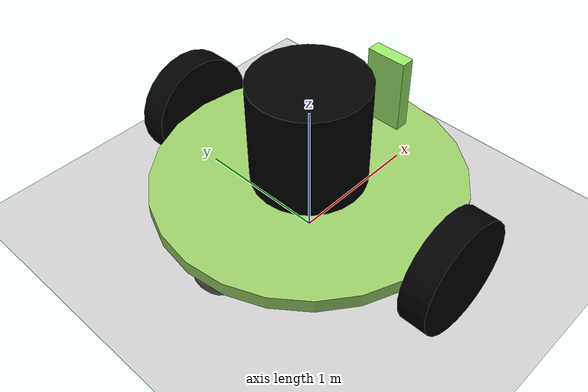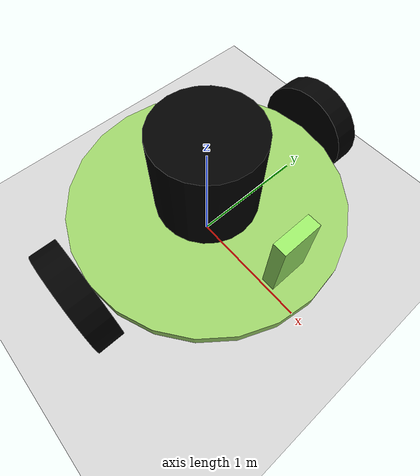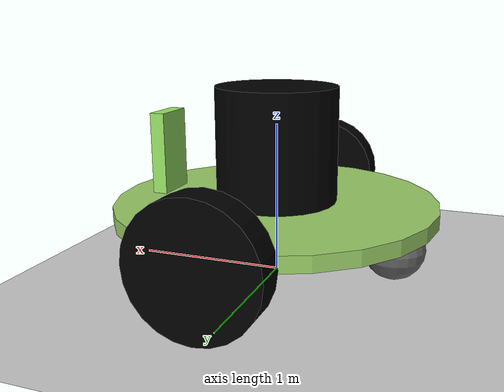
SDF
<?xml version="1.0" ?>
<sdf version="1.8">
    <world name="car_world">
        <physics name="1ms" type="ignored">
            <max_step_size>0.001</max_step_size>
            <real_time_factor>1.0</real_time_factor>
        </physics>
        <plugin
            filename="gz-sim-physics-system"
            name="gz::sim::systems::Physics">
        </plugin>
        <plugin
            filename="gz-sim-user-commands-system"
            name="gz::sim::systems::UserCommands">
        </plugin>
        <plugin
            filename="gz-sim-scene-broadcaster-system"
            name="gz::sim::systems::SceneBroadcaster">
        </plugin>
        <plugin
            filename="gz-sim-sensors-system"
            name="gz::sim::systems::Sensors">
            <render_engine>ogre2</render_engine>
        </plugin>

        <light type="directional" name="sun">
            <cast_shadows>true</cast_shadows>
            <pose>0 0 10 0 0 0</pose>
            <diffuse>0.8 0.8 0.8 1</diffuse>
            <specular>0.2 0.2 0.2 1</specular>
            <attenuation>
                <range>1000</range>
                <constant>0.9</constant>
                <linear>0.01</linear>
                <quadratic>0.001</quadratic>
            </attenuation>
            <direction>-0.5 0.1 -0.9</direction>
        </light>

        <model name="ground_plane">
            <static>true</static>
            <link name="link">
                <collision name="collision">
                <geometry>
                    <plane>
                    <normal>0 0 1</normal>
                    </plane>
                </geometry>
                </collision>
                <visual name="visual">
                <geometry>
                    <plane>
                    <normal>0 0 1</normal>
                    <size>24 18</size>
                    </plane>
                </geometry>
                <material>
                    <ambient>0.8 0.8 0.8 1</ambient>
                    <diffuse>0.8 0.8 0.8 1</diffuse>
                    <specular>0.8 0.8 0.8 1</specular>
                </material>
                </visual>
            </link>
        </model>

        <model name='jetbot' canonical_link='chassis'>
            <pose relative_to='world'>0 0 0 0 0 0</pose>   <!--the pose is relative to the world by default-->

            <!-- sensor frames -->
            <frame name="lidar_frame" attached_to='chassis'>
                <pose>0.0 0.0 1.0 0 0 0</pose>
            </frame>

            <frame name="camera_frame" attached_to='chassis'>
                <pose>0.0 0.0 1.0 0 0 0</pose>
            </frame>

            <!--chassis-->
            <link name='chassis'>
                <pose relative_to='__model__'>0.0 0 0.45 0 0 0</pose>
                <inertial> <!--inertial properties of the link mass, inertia matix-->
                    <mass>1.14395</mass>
                    <inertia>
                        <ixx>0.095329</ixx>
                        <ixy>0</ixy>
                        <ixz>0</ixz>
                        <iyy>0.381317</iyy>
                        <iyz>0</iyz>
                        <izz>0.476646</izz>
                    </inertia>
                </inertial>
                <visual name='visual'>
                    <geometry>
                        <cylinder>
                            <radius>1.07</radius>
                            <length>0.1</length>
                        </cylinder>
                    </geometry>
                    <!--Color of the link-->
                    <material>
                        <ambient>0.6 0.8 0.4 1</ambient>
                        <diffuse>0.6 0.8 0.4 1</diffuse>
                        <specular>0.6 0.8 0.4 1</specular>
                    </material>
                </visual>
                <collision name='collision'>
                    <geometry>
                        <cylinder>
                            <radius>0.107</radius>
                            <length>0.01</length>
                        </cylinder>
                    </geometry>
                </collision>
            </link>

            <!-- LIDAR 3D shape definition -->
            <link name='lidar'>
                <pose relative_to='chassis'>0.0 0 0.4 0 0 0</pose>
                <inertial> <!--inertial properties of the link mass, inertia matix-->
                    <mass>1.14395</mass>
                    <inertia>
                        <ixx>0.095329</ixx>
                        <ixy>0</ixy>
                        <ixz>0</ixz>
                        <iyy>0.381317</iyy>
                        <iyz>0</iyz>
                        <izz>0.476646</izz>
                    </inertia>
                </inertial>
                <visual name='visual'>
                    <geometry>
                        <cylinder>
                            <radius>0.4</radius>
                            <length>0.8</length>
                        </cylinder>
                    </geometry>
                    <!--Color of the link-->
                    <material>
                        <ambient>0.0 0.0 0.0 1</ambient>
                        <diffuse>0.0 0.0 0.0 1</diffuse>
                        <specular>0.0 0.0 0.0 1</specular>
                    </material>
                </visual>
                <collision name='collision'>
                    <geometry>
                        <cylinder>
                            <radius>0.4</radius>
                            <length>0.8</length>
                        </cylinder>
                    </geometry>
                </collision>

                <!-- LIDAR sensor parameters -->
                <sensor name='gpu_lidar' type='gpu_lidar'>"
                    <pose relative_to='lidar_frame'>0 0 0 0 0 0</pose>
                    <topic>lidar</topic>
                    <update_rate>5</update_rate>
                    <ray>
                        <scan>
                            <horizontal>
                                <samples>360</samples>
                                <resolution>1</resolution>
                                <min_angle>-1.396263</min_angle>
                                <max_angle>1.396263</max_angle>
                            </horizontal>
                            <vertical>
                                <samples>1</samples>
                                <resolution>0.01</resolution>
                                <min_angle>0</min_angle>
                                <max_angle>0</max_angle>
                            </vertical>
                        </scan>
                        <range>
                            <min>0.15</min>
                            <max>12.0</max>
                            <resolution>0.01</resolution>
                        </range>
                    </ray>
                    <always_on>1</always_on>
                    <visualize>true</visualize>
                </sensor>
            </link>

            <!-- CAMERA 3D shape definition -->
            <link name='camera'>
                <pose relative_to='chassis'>0.8 0.0 0.3 0 0 0</pose>
                <inertial> <!--inertial properties of the link mass, inertia matix-->
                    <mass>0.1</mass>
                    <inertia>
                        <ixx>0.095329</ixx>
                        <ixy>0</ixy>
                        <ixz>0</ixz>
                        <iyy>0.381317</iyy>
                        <iyz>0</iyz>
                        <izz>0.476646</izz>
                    </inertia>
                </inertial>
                <visual name='visual'>
                    <geometry>
                        <box>
                            <size>0.1 0.3 0.6</size>
                        </box>
                    </geometry>
                    <!--Color of the link-->
                    <material>
                        <ambient>0.6 0.9 0.4 1</ambient>
                        <diffuse>0.6 0.9 0.4 1</diffuse>
                        <specular>0.6 0.9 0.4 1</specular>
                    </material>
                </visual>
                <collision name='collision'>
                    <geometry>
                        <cylinder>
                            <radius>0.4</radius>
                            <length>0.8</length>
                        </cylinder>
                    </geometry>
                </collision>

                <!-- CAMERA sensor parameters -->
                <sensor name="rgb_camera" type="camera">
                    <pose relative_to='camera_frame'>0 0 0 0 0 0</pose>
                    <always_on>true</always_on>
                    <visualize>true</visualize>
                    <update_rate>5</update_rate>
                    <topic>camera/image_raw</topic>
                    <gz_frame_id>camera_rgb_frame</gz_frame_id>
                    <camera name="intel_realsense_r200">
                        <camera_info_topic>camera/camera_info</camera_info_topic>
                        <horizontal_fov>1.02974</horizontal_fov>
                        <image>
                            <width>320</width>
                            <height>240</height>
                            <format>R8G8B8</format>
                        </image>
                        <clip>
                            <near>0.02</near>
                            <far>300</far>
                        </clip>
                    </camera>
                </sensor>
            </link>

            <!--Left wheel 3D shape definition-->
            <link name='left_wheel'>
                <pose relative_to="chassis">0.0 1.17 0 -1.5707 0 0</pose> <!--angles are in radian-->
                <inertial>
                    <mass>1</mass>
                    <inertia>
                        <ixx>0.043333</ixx>
                        <ixy>0</ixy>
                        <ixz>0</ixz>
                        <iyy>0.043333</iyy>
                        <iyz>0</iyz>
                        <izz>0.08</izz>
                    </inertia>
                </inertial>
                <visual name='visual'>
                    <geometry>
                        <cylinder>
                            <radius>0.4</radius>
                            <length>0.2</length>
                        </cylinder>
                    </geometry>
                    <material>
                        <ambient>0.0 0.0 0.0 1</ambient>
                        <diffuse>0.0 0.0 0.0 1</diffuse>
                        <specular>0.0 0.0 0.0 1</specular>
                    </material>
                </visual>
                <collision name='collision'>
                    <geometry>
                        <cylinder>
                            <radius>0.4</radius>
                            <length>0.2</length>
                        </cylinder>
                    </geometry>
                </collision>
            </link>

            <!--Right wheel 3D shape definition-->
            <link name='right_wheel'>
                <pose relative_to="chassis">0.0 -1.17 0 -1.5707 0 0</pose> <!--angles are in radian-->
                <inertial>
                    <mass>1</mass>
                    <inertia>
                        <ixx>0.043333</ixx>
                        <ixy>0</ixy>
                        <ixz>0</ixz>
                        <iyy>0.043333</iyy>
                        <iyz>0</iyz>
                        <izz>0.08</izz>
                    </inertia>
                </inertial>
                <visual name='visual'>
                    <geometry>
                        <cylinder>
                            <radius>0.4</radius>
                            <length>0.2</length>
                        </cylinder>
                    </geometry>
                    <material>
                        <ambient>0.0 0.0 0.0 1</ambient>
                        <diffuse>0.0 0.0 0.0 1</diffuse>
                        <specular>0.0 0.0 0.0 1</specular>
                    </material>
                </visual>
                <collision name='collision'>
                    <geometry>
                        <cylinder>
                            <radius>0.4</radius>
                            <length>0.2</length>
                        </cylinder>
                    </geometry>
                </collision>
            </link>

            <!--arbitrary frame-->
            <frame name="caster_frame0" attached_to='chassis'>
                <pose>0.8 0 -0.2 0 0 0</pose>
            </frame>

            <!--caster wheel-->
            <link name='caster0'>
                <pose relative_to='caster_frame0'/>
                <inertial>
                    <mass>1</mass>
                    <inertia>
                        <ixx>0.016</ixx>
                        <ixy>0</ixy>
                        <ixz>0</ixz>
                        <iyy>0.016</iyy>
                        <iyz>0</iyz>
                        <izz>0.016</izz>
                    </inertia>
                </inertial>
                <visual name='visual'>
                    <geometry>
                        <sphere>
                            <radius>0.2</radius>
                        </sphere>
                    </geometry>
                    <material>
                        <ambient>0.4 0.4 0.4 1</ambient>
                        <diffuse>0.4 0.4 0.4 1</diffuse>
                        <specular>0.4 0.4 0.4 1</specular>
                    </material>
                </visual>
                <collision name='collision'>
                    <geometry>
                        <sphere>
                            <radius>0.2</radius>
                        </sphere>
                    </geometry>
                </collision>
            </link>

            <!--arbitrary frame-->
            <frame name="caster_frame1" attached_to='chassis'>
                <pose>-0.8 0 -0.2 0 0 0</pose>
            </frame>

            <!--caster wheel-->
            <link name='caster1'>
                <pose relative_to='caster_frame1'/>
                <inertial>
                    <mass>1</mass>
                    <inertia>
                        <ixx>0.016</ixx>
                        <ixy>0</ixy>
                        <ixz>0</ixz>
                        <iyy>0.016</iyy>
                        <iyz>0</iyz>
                        <izz>0.016</izz>
                    </inertia>
                </inertial>
                <visual name='visual'>
                    <geometry>
                        <sphere>
                            <radius>0.2</radius>
                        </sphere>
                    </geometry>
                    <material>
                        <ambient>0.4 0.4 0.4 1</ambient>
                        <diffuse>0.4 0.4 0.4 1</diffuse>
                        <specular>0.4 0.4 0.4 1</specular>
                    </material>
                </visual>
                <collision name='collision'>
                    <geometry>
                        <sphere>
                            <radius>0.2</radius>
                        </sphere>
                    </geometry>
                </collision>
            </link>

            <!--left wheel joint-->
            <joint name='left_wheel_joint' type='revolute'>
                <pose relative_to='left_wheel'/>
                <parent>chassis</parent>
                <child>left_wheel</child>
                <axis>
                    <xyz expressed_in='__model__'>0 1 0</xyz> <!--can be descired to any frame or even arbitrary frames-->
                    <limit>
                        <lower>-1.79769e+308</lower>    <!--negative infinity-->
                        <upper>1.79769e+308</upper>     <!--positive infinity-->
                    </limit>
                </axis>
            </joint>

            <!--right wheel joint-->
            <joint name='right_wheel_joint' type='revolute'>
                <pose relative_to='right_wheel'/>
                <parent>chassis</parent>
                <child>right_wheel</child>
                <axis>
                    <xyz expressed_in='__model__'>0 1 0</xyz>
                    <limit>
                        <lower>-1.79769e+308</lower>    <!--negative infinity-->
                        <upper>1.79769e+308</upper>     <!--positive infinity-->
                    </limit>
                </axis>
            </joint>

            <!--caster wheel joint--> <!--pose defult value is the child-->
            <joint name='caster_wheel_front' type='ball'>
                <parent>chassis</parent>
                <child>caster0</child>
            </joint>
            <joint name='caster_wheel_rear' type='ball'>
                <parent>chassis</parent>
                <child>caster1</child>
            </joint>

            <joint name="lidar_joint" type="fixed">
                <parent>chassis</parent>
                <child>lidar</child>
            </joint>

            <joint name="camera_joint" type="fixed">
                <parent>chassis</parent>
                <child>camera</child>
            </joint>

            <!-- cmd_vel and odometry -->
            <plugin
                filename="gz-sim-diff-drive-system"
                name="gz::sim::systems::DiffDrive">
                <left_joint>left_wheel_joint</left_joint>
                <right_joint>right_wheel_joint</right_joint>
                <wheel_separation>1.2</wheel_separation>
                <wheel_radius>0.4</wheel_radius>
                <odom_publish_frequency>1</odom_publish_frequency>
                <topic>cmd_vel</topic>
            </plugin>

        </model>
    </world>
</sdf>
